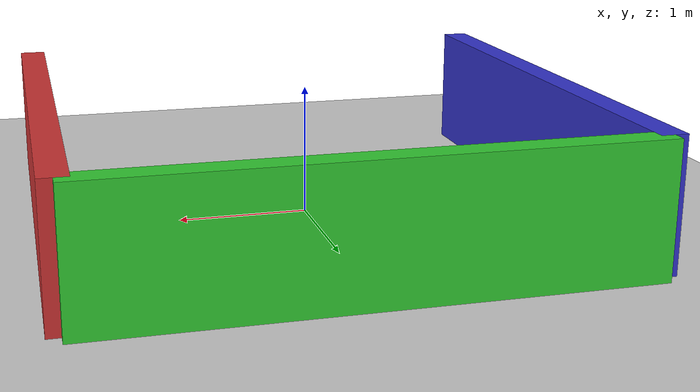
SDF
<?xml version="1.0" ?>
<sdf version="1.6">
  <world name="default">

    <!-- 光源 -->
    <include>
      <uri>model://sun</uri>
    </include>

    <!-- 地面 -->
    <include>
      <uri>model://ground_plane</uri>
    </include>

    <!-- 物理引擎参数 -->
    <physics type="ode">
      <max_step_size>0.001</max_step_size>
      <real_time_factor>1.0</real_time_factor>
      <real_time_update_rate>1000</real_time_update_rate>
    </physics>

    <!-- 场景设置 -->
    <scene>
      <ambient>0.4 0.4 0.4 1</ambient>
      <background>0.7 0.7 0.7 1</background>
      <shadows>true</shadows>
    </scene>

    <!-- 添加一些障碍物用于建图测试 -->
    <!-- 墙壁1 -->
    <model name="wall_1">
      <pose>2 0 0.5 0 0 0</pose>
      <static>true</static>
      <link name="link">
        <collision name="collision">
          <geometry>
            <box>
              <size>0.2 4 1</size>
            </box>
          </geometry>
        </collision>
        <visual name="visual">
          <geometry>
            <box>
              <size>0.2 4 1</size>
            </box>
          </geometry>
          <material>
            <ambient>0.8 0.2 0.2 1</ambient>
            <diffuse>0.8 0.2 0.2 1</diffuse>
          </material>
        </visual>
      </link>
    </model>

    <!-- 墙壁2 -->
    <model name="wall_2">
      <pose>0 2 0.5 0 0 1.5708</pose>
      <static>true</static>
      <link name="link">
        <collision name="collision">
          <geometry>
            <box>
              <size>0.2 4 1</size>
            </box>
          </geometry>
        </collision>
        <visual name="visual">
          <geometry>
            <box>
              <size>0.2 4 1</size>
            </box>
          </geometry>
          <material>
            <ambient>0.2 0.8 0.2 1</ambient>
            <diffuse>0.2 0.8 0.2 1</diffuse>
          </material>
        </visual>
      </link>
    </model>

    <!-- 墙壁3 -->
    <model name="wall_3">
      <pose>-2 0 0.5 0 0 0</pose>
      <static>true</static>
      <link name="link">
        <collision name="collision">
          <geometry>
            <box>
              <size>0.2 4 1</size>
            </box>
          </geometry>
        </collision>
        <visual name="visual">
          <geometry>
            <box>
              <size>0.2 4 1</size>
            </box>
          </geometry>
          <material>
            <ambient>0.2 0.2 0.8 1</ambient>
            <diffuse>0.2 0.2 0.8 1</diffuse>
          </material>
        </visual>
      </link>
    </model>

    <!-- 障碍物盒子 -->
    <model name="box_1">
      <pose>1 1 0.25 0 0 0</pose>
      <static>true</static>
      <link name="link">
        <collision name="collision">
          <geometry>
            <box>
              <size>0.5 0.5 0.5</size>
            </box>
          </geometry>
        </collision>
        <visual name="visual">
          <geometry>
            <box>
              <size>0.5 0.5 0.5</size>
            </box>
          </geometry>
          <material>
            <ambient>0.8 0.8 0.2 1</ambient>
            <diffuse>0.8 0.8 0.2 1</diffuse>
          </material>
        </visual>
      </link>
    </model>

  </world>
</sdf>
